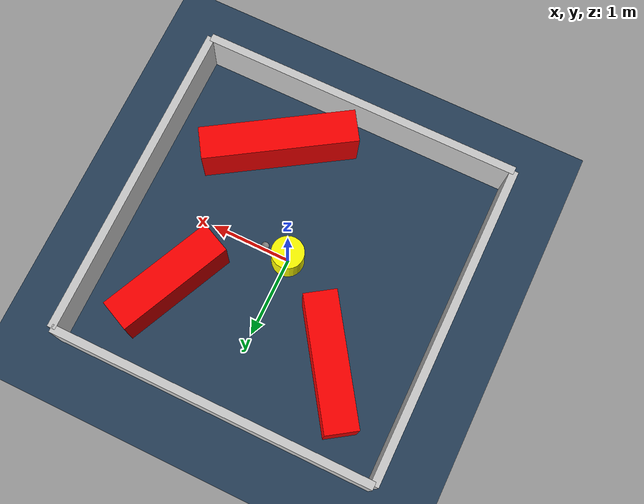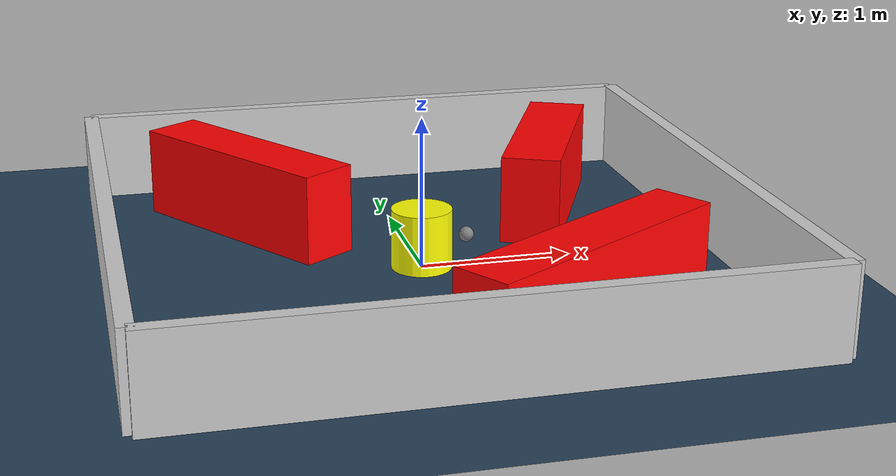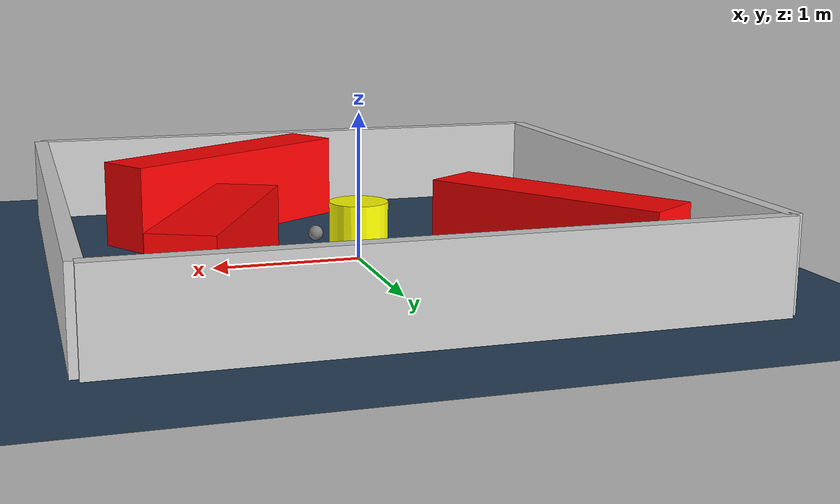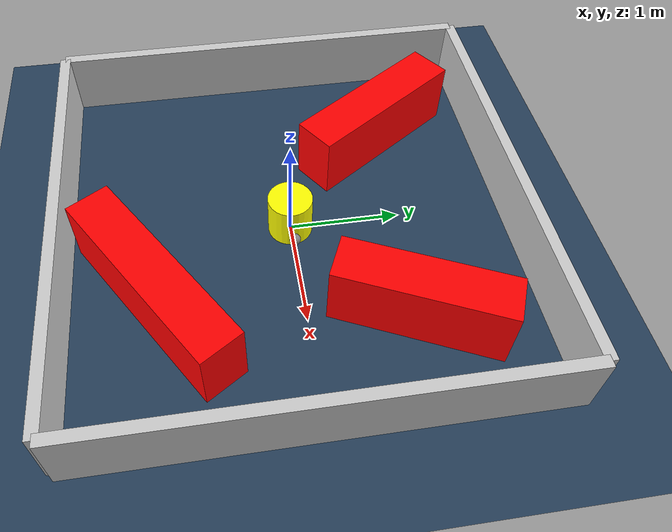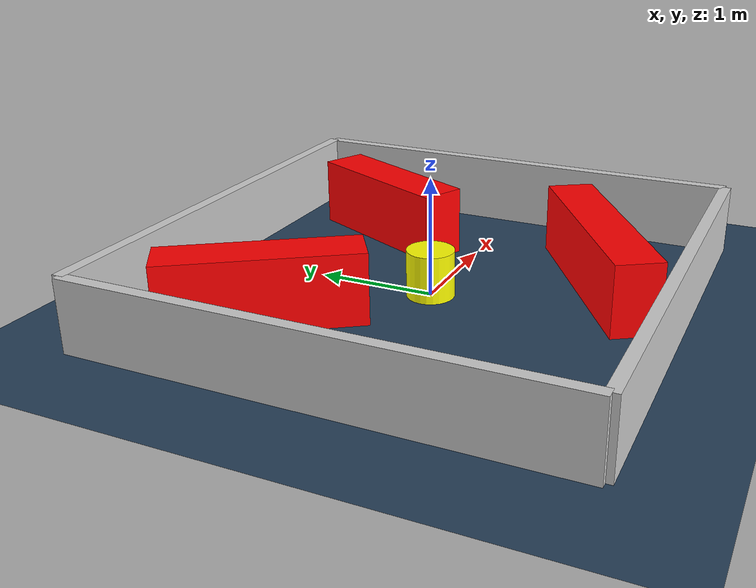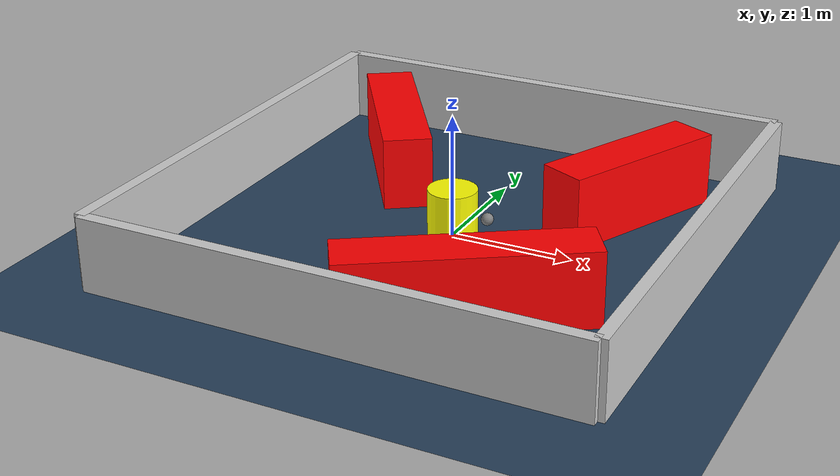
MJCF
<?xml version="1.0" ?>
<mujoco model="generated_environment">
  <option timestep="0.01" integrator="RK4" cone="elliptic"/>
  <default>
    <geom density="1"/>
  </default>
  <asset>
    <texture builtin="gradient" height="3072" rgb1="0.3 0.5 0.7" rgb2="0 0 0" type="skybox" width="512"/>
    <texture builtin="checker" height="300" mark="edge" markrgb="0.8 0.8 0.8" name="groundplane" rgb1="0.2 0.3 0.4" rgb2="0.1 0.2 0.3" type="2d" width="300"/>
    <material name="groundplane" reflectance="0.2" texrepeat="5 5" texture="groundplane" texuniform="true"/>
    <material name="robot" rgba="0.0 1.0 0.0 1"/>
  </asset>
  <worldbody>
    <light dir="0 0 -1" directional="true" pos="0 0 1.5"/>
    <geom condim="4" friction="1.0 0.005 0.001" material="groundplane" name="floor" size="0 0 0.05" type="plane"/>
    <body name="walls">
      <geom name="wall_1" condim="4" pos="-2.0 0.0 0.3" rgba="0.800000011920929 0.800000011920929 0.800000011920929 1.0" size="0.05 2.0 0.3" type="box"/>
      <geom name="wall_2" condim="4" pos="2.0 0.0 0.3" rgba="0.800000011920929 0.800000011920929 0.800000011920929 1.0" size="0.05 2.0 0.3" type="box"/>
      <geom name="wall_3" condim="4" pos="0.0 -2.0 0.3" rgba="0.800000011920929 0.800000011920929 0.800000011920929 1.0" size="2.0 0.05 0.3" type="box"/>
      <geom name="wall_4" condim="4" pos="0.0 2.0 0.3" rgba="0.800000011920929 0.800000011920929 0.800000011920929 1.0" size="2.0 0.05 0.3" type="box"/>
    </body>
    <body name="robot">
      <joint name="joint_x" type="slide" pos="0 0 0" axis="1 0 0"/>
      <joint name="joint_y" type="slide" pos="0 0 0" axis="0 1 0"/>
      <geom name="robot" type="sphere" pos="0.3 0.0 0.2" size="0.05" mass="5." friction="1.0 0.005 0.0001" condim="4" rgba="0.5 0.5 0.5 1.0"/>
      <site name="sensor_ball"/>
    </body>
    <body name="obstacle_movable_1">
      <geom name="obstacle_movable_1" condim="4" pos="0.0 0.0 0.2" euler="0 0 0.0" friction="1.0 0.005 0.001" rgba="1.0 1.0 0.0 1.0" size="0.2 0.2 0.0" type="cylinder" mass="0.1"/>
      <joint type="free"/>
    </body>
    <body name="obstacle_2_static">
      <geom name="obstacle_2_static" condim="4" pos="1.1169906428823133 0.9078807336234191 0.3" euler="0 0 65.08012072146468" friction="1.0 0.005 0.001" rgba="1 0 0 1" size="0.7343335655136938 0.2 0.3" type="box"/>
    </body>
    <body name="obstacle_3_static">
      <geom name="obstacle_3_static" condim="4" pos="-1.000188815056045 0.9694112024027872 0.3" euler="0 0 303.8380847575037" friction="1.0 0.005 0.001" rgba="1 0 0 1" size="0.8069397758505132 0.2 0.3" type="box"/>
    </body>
    <body name="obstacle_4_static">
      <geom name="obstacle_4_static" condim="4" pos="0.7061104939156932 -1.2162648825233953 0.3" euler="0 0 212.51375512790312" friction="1.0 0.005 0.001" rgba="1 0 0 1" size="0.9455083885394229 0.2 0.3" type="box"/>
    </body>
  </worldbody>
  <actuator>
    <motor name="actuator_x" joint="joint_x" gear="1" ctrlrange="-1 1"/>
    <motor name="actuator_y" joint="joint_y" gear="1" ctrlrange="-1 1"/>
  </actuator>
</mujoco>
